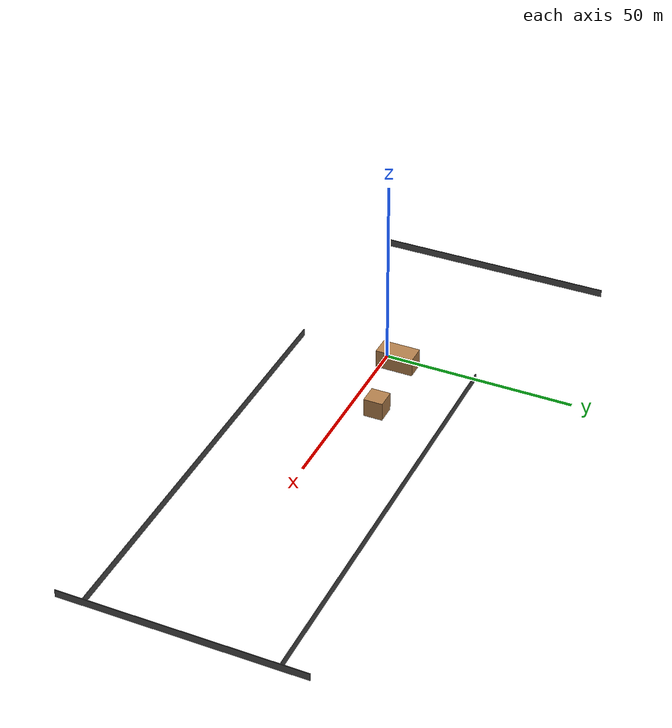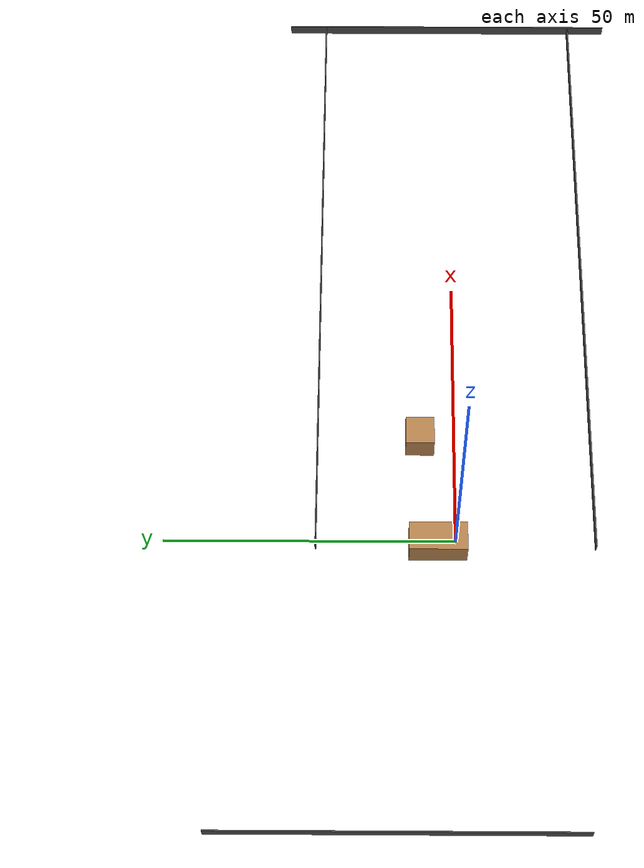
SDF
<sdf version="1.6">
 <world name="robotx_example_course">
  <scene>
   <sky><clouds><speed>12</speed></clouds></sky>
   <grid>0</grid>
   <origin_visual>0</origin_visual>
   <ambient>0.4 0.4 0.4 1</ambient>
   <background>0.7 0.7 0.7 1</background>
   <shadows>1</shadows>
  </scene>
  <spherical_coordinates>
   <surface_model>EARTH_WGS84</surface_model>
   <world_frame_orientation>ENU</world_frame_orientation>
   <latitude_deg>-33.7242</latitude_deg>
   <longitude_deg>150.68</longitude_deg>
   <elevation>0</elevation>
   <heading_deg>0</heading_deg>
  </spherical_coordinates>
  <light name="sun" type="directional">
   <pose>0 0 10 0 -0 0</pose>
   <diffuse>0.8 0.8 0.8 1</diffuse>
   <specular>0.2 0.2 0.2 1</specular>
   <attenuation>
    <range>1000</range>
    <constant>0.9</constant>
    <linear>0.01</linear>
    <quadratic>0.001</quadratic>
   </attenuation>
   <direction>-0.5 0.1 -0.9</direction>
   <spot><inner_angle>0</inner_angle><outer_angle>0</outer_angle><falloff>0</falloff></spot>
  </light>
  <plugin filename="libusv_gazebo_wind_plugin.so" name="wind">
   <wind_obj>
    <name>wamv</name>
    <link_name>wamv/base_link</link_name>
    <coeff_vector>.5 .5 .33</coeff_vector>
   </wind_obj>
   <wind_direction>270</wind_direction>
   <wind_mean_velocity>0</wind_mean_velocity>
   <var_wind_gain_constants>0</var_wind_gain_constants>
   <var_wind_time_constants>2</var_wind_time_constants>
   <update_rate>10</update_rate>
   <topic_wind_speed>/vrx/debug/wind/speed</topic_wind_speed>
   <topic_wind_direction>/vrx/debug/wind/direction</topic_wind_direction>
  </plugin>
  <model name="box_north">
   <pose>111 0 0 0 0 0</pose>
   <static>true</static>
   <link name="link">
    <visual name="visual">
     <geometry><box><size>0.2 62 2</size></box></geometry>
     <material>
      <script><uri>file://media/materials/scripts/gazebo.material</uri><name>Gazebo/DarkGray</name></script>
     </material>
    </visual>
    <collision name="collision"><geometry><box><size>0.2 62 2</size></box></geometry></collision>
   </link>
  </model>
  <model name="box_south">
   <pose>-50 10 0 0 0 0</pose>
   <static>true</static>
   <link name="link">
    <visual name="visual">
     <geometry><box><size>0.2 62 2</size></box></geometry>
     <material>
      <script><uri>file://media/materials/scripts/gazebo.material</uri><name>Gazebo/DarkGray</name></script>
     </material>
    </visual>
    <collision name="collision"><geometry><box><size>0.2 62 2</size></box></geometry></collision>
   </link>
  </model>
  <model name="box_east">
   <pose>55 -24 0 0 0 0</pose>
   <static>true</static>
   <link name="link">
    <visual name="visual">
     <geometry><box><size>112 0.2 2</size></box></geometry>
     <material>
      <script><uri>file://media/materials/scripts/gazebo.material</uri><name>Gazebo/DarkGray</name></script>
     </material>
    </visual>
    <collision name="collision"><geometry><box><size>112 0.2 2</size></box></geometry></collision>
   </link>
  </model>
  <model name="box_west">
   <pose>55 24 0 0 0 0</pose>
   <static>true</static>
   <link name="link">
    <visual name="visual">
     <geometry><box><size>112 0.2 2</size></box></geometry>
     <material>
      <script><uri>file://media/materials/scripts/gazebo.material</uri><name>Gazebo/DarkGray</name></script>
     </material>
    </visual>
    <collision name="collision"><geometry><box><size>112 0.2 2</size></box></geometry></collision>
   </link>
  </model>
  <model name="BOX_0">
   <link name="BOX_0_link">
    <inertial>
     <pose>0.0 3.0 0.3 0 0 0</pose>
     <mass>10.0</mass>
     <inertia>
      <ixx>104.16666666666667</ixx>
      <ixy>0</ixy>
      <ixz>0</ixz>
      <iyy>41.66666666666667</iyy>
      <iyz>0</iyz>
      <izz>104.16666666666667</izz>
     </inertia>
    </inertial>
    <collision name="BOX_0_link_collision">
     <pose>0.0 3.0 0.3 0 0 0</pose>
     <geometry><box><size>5.0 10.0 5.0</size></box></geometry>
     <surface>
      <contact><ode><kp>100000</kp><kd>100000</kd></ode></contact>
      <friction><ode><mu>10</mu><mu2>10</mu2></ode></friction>
     </surface>
    </collision>
    <visual name="BOX_0_link_visual">
     <pose>0.0 3.0 0.3 0 0 0</pose>
     <geometry><box><size>5.0 10.0 5.0</size></box></geometry>
     <material>
      <script><name>Gazebo/WoodFloor</name><uri>file://media/materials/scripts/gazebo.material</uri></script>
     </material>
    </visual>
   </link>
   <plugin name="BuoyancyPlugin" filename="libbuoyancy_gazebo_plugin.so">
    <wave_model>ocean_waves</wave_model>
    <fluid_density>1000</fluid_density>
    <fluid_level>0</fluid_level>
    <linear_drag>1000.0</linear_drag>
    <angular_drag>200.0</angular_drag>
    <buoyancy name="buoyancy_base">
     <link_name>BOX_0_link</link_name>
     <pose>0.0 3.0 0.3 0 0 0</pose>
     <geometry><sphere><radius>0.28794119114848615</radius></sphere></geometry>
    </buoyancy>
   </plugin>
  </model>
  <model name="BOX_1">
   <link name="BOX_1_link">
    <inertial>
     <pose>20.0 6.0 0.3 0 0 0</pose>
     <mass>10.0</mass>
     <inertia>
      <ixx>41.66666666666667</ixx>
      <ixy>0</ixy>
      <ixz>0</ixz>
      <iyy>41.66666666666667</iyy>
      <iyz>0</iyz>
      <izz>41.66666666666667</izz>
     </inertia>
    </inertial>
    <collision name="BOX_1_link_collision">
     <pose>20.0 6.0 0.3 0 0 0</pose>
     <geometry><box><size>5.0 5.0 5.0</size></box></geometry>
     <surface>
      <contact><ode><kp>100000</kp><kd>100000</kd></ode></contact>
      <friction><ode><mu>10</mu><mu2>10</mu2></ode></friction>
     </surface>
    </collision>
    <visual name="BOX_1_link_visual">
     <pose>20.0 6.0 0.3 0 0 0</pose>
     <geometry><box><size>5.0 5.0 5.0</size></box></geometry>
     <material>
      <script><name>Gazebo/WoodFloor</name><uri>file://media/materials/scripts/gazebo.material</uri></script>
     </material>
    </visual>
   </link>
   <plugin name="BuoyancyPlugin" filename="libbuoyancy_gazebo_plugin.so">
    <wave_model>ocean_waves</wave_model>
    <fluid_density>1000</fluid_density>
    <fluid_level>0</fluid_level>
    <linear_drag>1000.0</linear_drag>
    <angular_drag>200.0</angular_drag>
    <buoyancy name="buoyancy_base">
     <link_name>BOX_1_link</link_name>
     <pose>20.0 6.0 0.3 0 0 0</pose>
     <geometry><sphere><radius>0.28794119114848615</radius></sphere></geometry>
    </buoyancy>
   </plugin>
  </model>
 </world>
</sdf>
